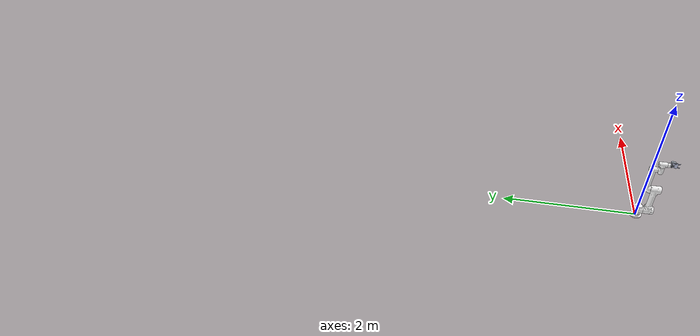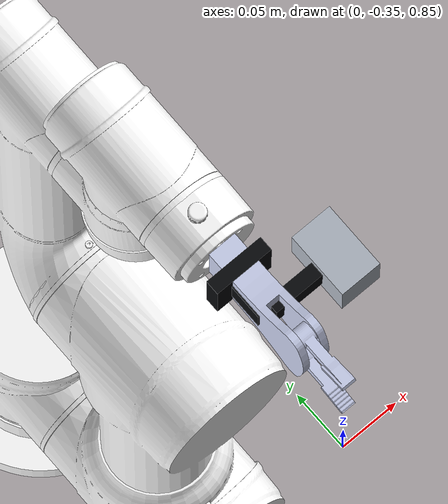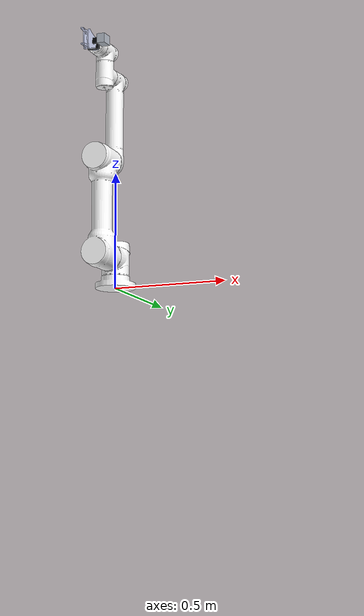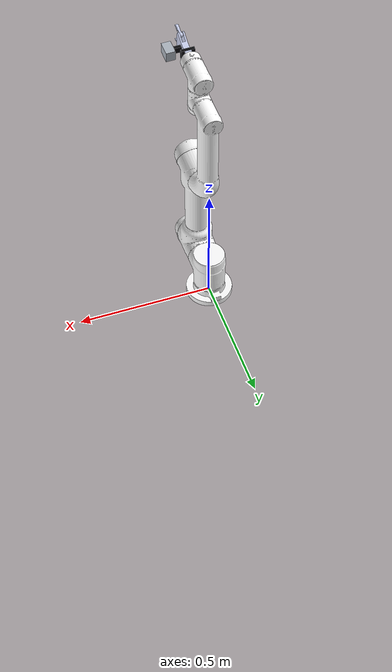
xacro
<?xml version="1.0"?>
<robot name="aubo_i5" xmlns:xacro="http://www.ros.org/wiki/xacro">
  <xacro:property name="M_PI" value="3.141592653589793"/>
  <xacro:arg name="camera_horizontal_fov" default="1.3962634016"/>
  <xacro:arg name="camera_lateral_offset" default="0.060"/>
  <xacro:arg name="camera_mount_z_shift" default="0.0"/>
  <xacro:arg name="camera_clip_near" default="0.05"/>
  <xacro:arg name="camera_pointcloud_cutoff" default="0.08"/>

  <xacro:include filename="$(find aubo_description)/urdf/jiazhua.urdf"/>
  <xacro:include filename="$(find aubo_description)/urdf/arm.xacro"/>
  <xacro:include filename="$(find aubo_description)/urdf/hand_camera.xacro"/>

  <joint name="ee_link_joint" type="fixed">
    <parent link="wrist3_Link"/>
    <child link="gripper_base_link"/>
    <origin xyz="0 0 0" rpy="0 0 0"/>
  </joint>

  <xacro:aubo_hand_camera parent_link="gripper_base_link"
      horizontal_fov="$(arg camera_horizontal_fov)"
      lateral_offset="$(arg camera_lateral_offset)"
      mount_z_shift="$(arg camera_mount_z_shift)"
      clip_near="$(arg camera_clip_near)"
      pointcloud_cutoff="$(arg camera_pointcloud_cutoff)"/>
</robot>

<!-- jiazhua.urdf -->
<robot name="jiazhua">

  <link name="gripper_base_link">
    <inertial>
      <origin xyz="0.0012 2.42861286636753E-17 0.0475830266682981" rpy="0 0 0" />
      <mass value="0.10588615547803" />
      <inertia
        ixx="0.000120405813410356"
        ixy="-3.77401154477319E-21"
        ixz="3.59933442415666E-21"
        iyy="9.48339427252608E-05"
        iyz="-1.11428968367808E-20"
        izz="3.86432252264647E-05" />
    </inertial>
    <visual>
      <origin xyz="0 0 0" rpy="0 0 0" />
      <geometry>
        <mesh filename="package://aubo_description/meshes/jiazhua/base_link.STL" />
      </geometry>
      <material name="jiazhua_bask_link_material">
        <color rgba="0.792156862745098 0.819607843137255 0.933333333333333 1" />
      </material>
    </visual>
    <collision>
      <origin  xyz="0 0 0" rpy="0 0 0" />
      <geometry>
        <mesh filename="package://aubo_description/meshes/jiazhua/base_link.STL" />
      </geometry>
    </collision>
  </link>
  <link  name="Link1">
    <inertial>
      <origin xyz="0.00188050176688574 -0.00120387769826689 0.0150298969423478" rpy="0 0 0" />
      <mass value="0.0054287821000724" />
      <inertia
        ixx="1.43577242109414E-06"
        ixy="9.68992808778747E-11"
        ixz="-2.28401464592307E-07"
        iyy="1.47943037043788E-06"
        iyz="4.56593730463517E-10"
        izz="1.48811775578354E-07" />
    </inertial>
    <visual>
      <origin xyz="0 0 0" rpy="0 0 0" />
      <geometry>
        <mesh filename="package://aubo_description/meshes/jiazhua/Link1.STL" />
      </geometry>
      <material name="link1_material">
        <color rgba="0.792156862745098 0.819607843137255 0.933333333333333 1" />
      </material>
    </visual>
    <collision>
      <origin xyz="0 0 0" rpy="0 0 0" />
      <geometry>
        <mesh filename="package://aubo_description/meshes/jiazhua/Link1.STL" />
      </geometry>
    </collision>
  </link>
  <!--
    The two fingers rotate about their local Y axes.  Because the finger joint
    frames have opposite yaw angles, equal positive joint commands produce a
    symmetric closing motion.
  -->
  <joint name="joint1" type="revolute">
    <origin xyz="0 -0.029 0.0892076231496363" rpy="0 -0.228448582107719 1.5707963267949" />
    <parent  link="gripper_base_link" />
    <child link="Link1" />
    <axis xyz="0 1 0" />
    <limit lower="0.0" upper="0.55" effort="20.0" velocity="1.0" />
    <dynamics damping="0.15" friction="0.05" />
  </joint>
  <link name="Link2">
    <inertial>
      <origin xyz="0.00184644766642264 0.00119612230173309 0.0148207361975697" rpy="0 0 0" />
      <mass  value="0.00542878210007239" />
      <inertia
        ixx="1.43577242109413E-06"
        ixy="9.68992808778728E-11"
        ixz="-2.28401464592308E-07"
        iyy="1.47943037043787E-06"
        iyz="4.56593730463535E-10"
        izz="1.48811775578354E-07" />
    </inertial>
    <visual>
      <origin xyz="0 0 0" rpy="0 0 0" />
      <geometry>
        <mesh filename="package://aubo_description/meshes/jiazhua/Link2.STL" />
      </geometry>
      <material name="link2_material">
        <color rgba="0.792156862745098 0.819607843137255 0.933333333333333 1" />
      </material>
    </visual>
    <collision>
      <origin xyz="0 0 0" rpy="0 0 0" />
      <geometry>
        <mesh filename="package://aubo_description/meshes/jiazhua/Link2.STL" />
      </geometry>
    </collision>
  </link>
  <joint name="joint2" type="revolute">
    <origin xyz="0 0.029 0.0892076231496363" rpy="0 -0.252554771757915 -1.5707963267949" />
    <parent link="gripper_base_link" />
    <child link="Link2" />
    <axis xyz="0 1 0" />
    <limit lower="0.0" upper="0.55" effort="20.0" velocity="1.0" />
    <dynamics damping="0.15" friction="0.05" />
  </joint>

  <joint name="gripper_joint" type="fixed">
      <origin xyz="0 0 0.12" rpy="0 0 0"/>
      <parent link="gripper_base_link"/>
      <child link="gripper_link"/>
  </joint>
  <link name="gripper_link" />

  <!-- Tool centre point between and slightly in front of the fingertips.
       Keep gripper_link for compatibility and use tcp_link as the MoveIt tip. -->
  <joint name="tcp_joint" type="fixed">
      <origin xyz="0 0 0" rpy="0 0 0"/>
      <parent link="gripper_link"/>
      <child link="tcp_link"/>
  </joint>
  <link name="tcp_link" />

  <!-- Contact parameters for grasping lightweight objects in Gazebo. -->
  <gazebo reference="Link1">
    <mu1>20.0</mu1>
    <mu2>20.0</mu2>
    <kp>1000000</kp>
    <kd>100</kd>
    <minDepth>0.002</minDepth>
    <maxVel>0.01</maxVel>
  </gazebo>
  <gazebo reference="Link2">
    <mu1>20.0</mu1>
    <mu2>20.0</mu2>
    <kp>1000000</kp>
    <kd>100</kd>
    <minDepth>0.002</minDepth>
    <maxVel>0.01</maxVel>
  </gazebo>

  <!-- ros_control transmissions used by Gazebo and compatible hardware interfaces. -->
  <transmission name="joint1_trans">
    <type>transmission_interface/SimpleTransmission</type>
    <joint name="joint1">
      <hardwareInterface>hardware_interface/PositionJointInterface</hardwareInterface>
    </joint>
    <actuator name="joint1_motor">
      <hardwareInterface>hardware_interface/PositionJointInterface</hardwareInterface>
      <mechanicalReduction>1</mechanicalReduction>
    </actuator>
  </transmission>
  <transmission name="joint2_trans">
    <type>transmission_interface/SimpleTransmission</type>
    <joint name="joint2">
      <hardwareInterface>hardware_interface/PositionJointInterface</hardwareInterface>
    </joint>
    <actuator name="joint2_motor">
      <hardwareInterface>hardware_interface/PositionJointInterface</hardwareInterface>
      <mechanicalReduction>1</mechanicalReduction>
    </actuator>
  </transmission>
</robot>

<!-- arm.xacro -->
<robot name="aubo_i5" xmlns:xacro="http://ros.org/wiki/xacro">

 <!-- Keep the original stand-alone behaviour by default.  Composite robots can
      disable the world joint and place ros_control in another namespace. -->
    <xacro:arg name="standalone" default="true"/>
    <xacro:arg name="robot_namespace" default="/aubo_i5"/>

 <!-- Defining the colors used in this robot -->
    <material name="Black">
        <color rgba="0 0 0 1"/>
    </material>

    <material name="White">
        <color rgba="1 1 1 1"/>
    </material>

    <material name="Blue">
        <color rgba="0 0 1 1"/>
    </material>

    <material name="Red">
        <color rgba="1 0 0 1"/>
    </material>

    <material name="Grey">
        <color rgba="0.96 0.96 0.96 1"/>
    </material>

    <!-- Constants -->
    <xacro:property name="M_PI" value="3.14159"/>

    <!--/////////////////// DYNAMICS PARAM //////////////////////-->

    <xacro:macro name="I5_Shoulder_Inertia">
        <origin xyz="0.0 0.006 -0.002"
                rpy="0 0 0" />
        <mass value="5.05" />
        <inertia ixx="0.0148"
                 ixy="0"
                 ixz="0"
                 iyy="0.0143"
                 iyz="-0.0"
                 izz="0.0095" />
    </xacro:macro>

    <xacro:macro name="I5_UpperArm_Inertia">
        <origin xyz="0.304 0.0 -0.03"
                rpy="0 0 0" />
        <mass value="11.90" />
        <inertia ixx="0.0305"
                 ixy="0"
                 ixz="0"
                 iyy="0.4505"
                 iyz="0"
                 izz="0.0095" />
    </xacro:macro>

    <xacro:macro name="I5_ForeArm_Inertia">
        <origin xyz="0.415 0.0 0.0992"
                rpy="0 0 0" />
        <mass  value="3.3" />
        <inertia ixx="0.0033"
                 ixy="0"
                 ixz="0.0009"
                 iyy="0.0575"
                 iyz="0"
                 izz="0.0565" />
    </xacro:macro>

    <xacro:macro name="I5_Wrist1_Inertia">
        <origin xyz="0.0 0.0028 -0.003"
                rpy="0 0 0" />
        <mass value="1.62" />
        <inertia ixx="0.0023"
                 ixy="0"
                 ixz="0"
                 iyy="0.0013"
                 iyz="0.0"
                 izz="0.0022" />
    </xacro:macro>

    <xacro:macro name="I5_Wrist2_Inertia">
        <origin xyz="0.0 -0.0028 -0.003"
                rpy="0 0 0" />
        <mass value="1.62" />
        <inertia ixx="0.0023"
                 ixy="0"
                 ixz="0"
                 iyy="0.0013"
                 iyz="0.0"
                 izz="0.0022" />
    </xacro:macro>

    <xacro:macro name="I5_Wrist3_Inertia">
        <origin xyz="0.0 0.0 -0.0071"
                rpy="0 0 0" />
        <mass value="0.40" />
        <inertia ixx="0.013939"
                 ixy="0"
                 ixz="0"
                 iyy="0.013988"
                 iyz="0.0"
                 izz="0.0224092" />
    </xacro:macro>

    <!--/////////////////////////////// BASE_LINK ////////////////////////////////////-->

   <link name="base_link">
    <inertial>
      <origin xyz="-1.4795E-13 0.0015384 0.020951" rpy="0 0 0" />
      <mass value="0.83419" />
      <inertia ixx="0.0014414" ixy="7.8809E-15" ixz="8.5328E-16" iyy="0.0013542" iyz="-1.4364E-05" izz="0.0024659" />
    </inertial>
    <visual>
      <origin xyz="0 0 0" rpy="0 0 0" />
      <geometry>
        <mesh filename="package://aubo_description/meshes/aubo_i5/visual/base_link.DAE" />
      </geometry>
      <material name="">
        <color rgba="1 1 1 1" />
      </material>
    </visual>
    <collision>
      <origin xyz="0 0 0" rpy="0 0 0" />
      <geometry>
        <mesh filename="package://aubo_description/meshes/aubo_i5/collision/base_link.STL" />
      </geometry>
    </collision>
  </link>

  <!--/////////////////////////////// SHOULDER_LINK ////////////////////////////////////-->
  <link name="shoulder_Link">
    <inertial>
      <xacro:I5_Shoulder_Inertia />
    </inertial>
    <visual>
      <origin xyz="0 0 0" rpy="0 0 0" />
      <geometry>
        <mesh filename="package://aubo_description/meshes/aubo_i5/visual/shoulder_Link.DAE" />
      </geometry>
      <material name="">
        <color rgba="1 1 1 1" />
      </material>
    </visual>
    <collision>
      <origin xyz="0 0 0" rpy="0 0 0" />
      <geometry>
        <mesh filename="package://aubo_description/meshes/aubo_i5/collision/shoulder_Link.STL" />
      </geometry>
    </collision>
  </link>

  <!--/////////////////////////////// SHOULDER_JOINT ////////////////////////////////////-->
  <joint name="shoulder_joint" type="revolute">
    <origin xyz="0 0 0.122" rpy="0 0 3.1416" />
    <parent link="base_link" />
    <child link="shoulder_Link" />
    <axis xyz="0 0 1" />
    <limit lower="-3.04" upper="3.04" effort="300" velocity="100" />
  </joint>

  <!--/////////////////////////////// UPPERARM_LINK ////////////////////////////////////-->
  <link name="upperArm_Link">
    <inertial>
      <xacro:I5_UpperArm_Inertia />
    </inertial>
    <visual>
      <origin xyz="0 0 0" rpy="0 0 0" />
      <geometry>
        <mesh filename="package://aubo_description/meshes/aubo_i5/visual/upperArm_Link.DAE" />
      </geometry>
      <material name="">
        <color rgba="1 1 1 1" />
      </material>
    </visual>
    <collision>
      <origin xyz="0 0 0" rpy="0 0 0" />
      <geometry>
        <mesh filename="package://aubo_description/meshes/aubo_i5/collision/upperArm_Link.STL" />
      </geometry>
    </collision>
  </link>

  <!--/////////////////////////////// UPPERARM_JOINT ////////////////////////////////////-->
  <joint name="upperArm_joint" type="revolute">
    <origin xyz="0 0.1215 0" rpy="-1.5708 -1.5708 0" />
    <parent link="shoulder_Link" />
    <child link="upperArm_Link" />
    <axis xyz="0 0 1" />
    <!-- Restrict the second actuated joint to -60 deg ... +60 deg. -->
    <limit lower="-1.0471976" upper="1.0471976" effort="300" velocity="100" />
  </joint>

  <!--/////////////////////////////// FOREARM_LINK ////////////////////////////////////-->
  <link name="foreArm_Link">
    <inertial>
      <xacro:I5_ForeArm_Inertia />
    </inertial>
    <visual>
      <origin xyz="0 0 0" rpy="0 0 0" />
      <geometry>
        <mesh filename="package://aubo_description/meshes/aubo_i5/visual/foreArm_Link.DAE" />
      </geometry>
      <material name="">
        <color rgba="1 1 1 1" />
      </material>
    </visual>
    <collision>
      <origin xyz="0 0 0" rpy="0 0 0" />
      <geometry>
        <mesh filename="package://aubo_description/meshes/aubo_i5/collision/foreArm_Link.STL" />
      </geometry>
    </collision>
  </link>

  <!--/////////////////////////////// FOREARM_JOINT ////////////////////////////////////-->
  <joint name="foreArm_joint" type="revolute">
    <origin xyz="0.408 0 0" rpy="-3.1416 -5.1632E-18 -5.459E-16" />
    <parent link="upperArm_Link" />
    <child link="foreArm_Link" />
    <axis xyz="0 0 1" />
    <limit lower="-3.04" upper="3.04" effort="300" velocity="100" />
  </joint>

  <!--/////////////////////////////// WRIST1_LINK ////////////////////////////////////-->
  <link name="wrist1_Link">
    <inertial>
      <xacro:I5_Wrist1_Inertia />
    </inertial>
    <visual>
      <origin xyz="0 0 0" rpy="0 0 0" />
      <geometry>
        <mesh filename="package://aubo_description/meshes/aubo_i5/visual/wrist1_Link.DAE" />
      </geometry>
      <material name="">
        <color rgba="1 1 1 1" />
      </material>
    </visual>
    <collision>
      <origin xyz="0 0 0" rpy="0 0 0" />
      <geometry>
        <mesh filename="package://aubo_description/meshes/aubo_i5/collision/wrist1_Link.STL" />
      </geometry>
    </collision>
  </link>

  <!--/////////////////////////////// WRIST1_JOINT ////////////////////////////////////-->
  <joint name="wrist1_joint" type="revolute">
    <origin xyz="0.376 0 0" rpy="3.1416 -1.8323E-15 1.5708" />
    <parent link="foreArm_Link" />
    <child link="wrist1_Link" />
    <axis xyz="0 0 1" />
    <limit lower="-3.04" upper="3.04" effort="300" velocity="100" />
  </joint>

  <!--/////////////////////////////// WRIST2_LINK ////////////////////////////////////-->
  <link name="wrist2_Link">
    <inertial>
      <xacro:I5_Wrist2_Inertia />
    </inertial>
    <visual>
      <origin xyz="0 0 0" rpy="0 0 0" />
      <geometry>
        <mesh filename="package://aubo_description/meshes/aubo_i5/visual/wrist2_Link.DAE" />
      </geometry>
      <material name="">
        <color rgba="1 1 1 1" />
      </material>
    </visual>
    <collision>
      <origin xyz="0 0 0" rpy="0 0 0" />
      <geometry>
        <mesh filename="package://aubo_description/meshes/aubo_i5/collision/wrist2_Link.STL" />
      </geometry>
    </collision>
  </link>

  <!--/////////////////////////////// WRIST2_JOINT ////////////////////////////////////-->
  <joint name="wrist2_joint" type="revolute">
    <origin xyz="0 0.1025 0" rpy="-1.5708 -1.8709E-15 -1.6653E-16" />
    <parent link="wrist1_Link" />
    <child link="wrist2_Link" />
    <axis xyz="0 0 1" />
    <limit lower="-3.04" upper="3.04" effort="300" velocity="100" />
  </joint>

  <!--/////////////////////////////// WRIST3_LINK ////////////////////////////////////-->
  <link name="wrist3_Link">
    <inertial>
      <xacro:I5_Wrist3_Inertia />
    </inertial>
    <visual>
      <origin xyz="0 0 0" rpy="0 0 0" />
      <geometry>
        <mesh filename="package://aubo_description/meshes/aubo_i5/visual/wrist3_Link.DAE" />
      </geometry>
      <material name="">
        <color rgba="1 1 1 1" />
      </material>
    </visual>
    <collision>
      <origin xyz="0 0 0" rpy="0 0 0" />
      <geometry>
        <mesh filename="package://aubo_description/meshes/aubo_i5/collision/wrist3_Link.STL" />
      </geometry>
    </collision>
  </link>

  <!--/////////////////////////////// WRIST3_JOINT ////////////////////////////////////-->
  <joint name="wrist3_joint" type="revolute">
    <origin xyz="0 -0.094 0" rpy="1.5708 0 1.7907E-15" />
    <parent link="wrist2_Link" />
    <child link="wrist3_Link" />
    <axis xyz="0 0 1" />
    <limit lower="-3.04" upper="3.04" effort="300" velocity="100" />
  </joint>

 <!-- /////////////////////////////////   world   ////////////////////////////////////// -->
  <xacro:if value="$(arg standalone)">
    <link name="world" />

    <joint name="world_joint" type="fixed">
      <parent link="world" />
      <child link ="base_link" />
      <origin xyz="0.0 0.0 0.0" rpy="0.0 0.0 0.0" />
    </joint>
  </xacro:if>

  <!-- /////////////////////////////////   gazebo color   ////////////////////////////////////// -->

  <!--////////////////////////////////// Transmissions for ROS Control //////////////////////////-->

<xacro:macro name="aubo_arm_transmission" params="joint_name">
     <transmission name="${joint_name}_trans">
       <type>transmission_interface/SimpleTransmission</type>
       <joint name="${joint_name}">
         <hardwareInterface>hardware_interface/PositionJointInterface</hardwareInterface>
       </joint>
       <actuator name="${joint_name}_motor">
	       <hardwareInterface>hardware_interface/PositionJointInterface</hardwareInterface>
         <mechanicalReduction>1</mechanicalReduction>
       </actuator>
     </transmission>
 </xacro:macro>

  <xacro:aubo_arm_transmission joint_name="shoulder_joint"/>
  <xacro:aubo_arm_transmission joint_name="upperArm_joint"/>
  <xacro:aubo_arm_transmission joint_name="foreArm_joint"/>
  <xacro:aubo_arm_transmission joint_name="wrist1_joint"/>
  <xacro:aubo_arm_transmission joint_name="wrist2_joint"/>
  <xacro:aubo_arm_transmission joint_name="wrist3_joint"/>

  <!-- ros_control plugin -->
  <gazebo>
      <plugin name="gazebo_ros_control" filename="libgazebo_ros_control.so">
          <robotNamespace>$(arg robot_namespace)</robotNamespace>
	        <robotSimType>gazebo_ros_control/DefaultRobotHWSim</robotSimType>
          <legacyModeNS>true</legacyModeNS>
      </plugin>
  </gazebo>

</robot>

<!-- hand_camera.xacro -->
<robot name="aubo_hand_camera" xmlns:xacro="http://www.ros.org/wiki/xacro">

  <!-- Eye-in-hand RGB-D camera with RealSense-compatible ROS topic names.
       Camera optical conventions: +Z forward, +X right, +Y down. -->
  <xacro:macro name="aubo_hand_camera" params="parent_link lateral_offset:=0.060 mount_z_shift:=0.0 horizontal_fov:=1.3962634016 clip_near:=0.05 pointcloud_cutoff:=0.08">
    <link name="hand_camera_mount_link">
      <visual>
        <!-- 安装底板：固定在夹爪基座中心。 -->
        <origin xyz="0 0 ${0.020 + mount_z_shift}" rpy="0 0 0"/>
        <geometry><box size="0.050 0.050 0.012"/></geometry>
        <material name="hand_camera_black"><color rgba="0.025 0.03 0.04 1"/></material>
      </visual>
      <visual>
        <!-- 竖向支柱：连接安装底板与相机横梁。 -->
        <origin xyz="0 0 ${0.0375 + mount_z_shift}" rpy="0 0 0"/>
        <geometry><box size="0.024 0.024 0.035"/></geometry>
        <material name="hand_camera_black"/>
      </visual>
      <visual>
        <!-- 相机横梁：沿 X 方向延伸 60 mm，Y 方向保持居中。 -->
        <origin xyz="${lateral_offset / 2} 0 ${0.055 + mount_z_shift}" rpy="0 0 0"/>
        <geometry><box size="${lateral_offset} 0.024 0.012"/></geometry>
        <material name="hand_camera_black"/>
      </visual>
      <collision>
        <origin xyz="0 0 ${0.020 + mount_z_shift}" rpy="0 0 0"/>
        <geometry><box size="0.050 0.050 0.012"/></geometry>
      </collision>
      <collision>
        <origin xyz="0 0 ${0.0375 + mount_z_shift}" rpy="0 0 0"/>
        <geometry><box size="0.024 0.024 0.035"/></geometry>
      </collision>
      <collision>
        <origin xyz="${lateral_offset / 2} 0 ${0.055 + mount_z_shift}" rpy="0 0 0"/>
        <geometry><box size="${lateral_offset} 0.024 0.012"/></geometry>
      </collision>
      <inertial>
        <origin xyz="${0.025 + 0.5 * (lateral_offset - 0.060)} 0 ${0.045 + mount_z_shift}" rpy="0 0 0"/>
        <mass value="0.12"/>
        <inertia ixx="0.000066" ixy="0" ixz="0"
                 iyy="0.000018" iyz="0" izz="0.000080"/>
      </inertial>
    </link>
    <joint name="hand_camera_mount_joint" type="fixed">
      <parent link="${parent_link}"/>
      <child link="hand_camera_mount_link"/>
      <origin xyz="0 0 0" rpy="0 0 0"/>
    </joint>

    <link name="hand_camera_link">
      <visual>
        <geometry><box size="0.055 0.040 0.035"/></geometry>
        <material name="hand_camera_silver"><color rgba="0.68 0.71 0.75 1"/></material>
      </visual>
      <collision>
        <geometry><box size="0.055 0.040 0.035"/></geometry>
      </collision>
      <inertial>
        <mass value="0.10"/>
        <inertia ixx="0.000022" ixy="0" ixz="0"
                 iyy="0.000035" iyz="0" izz="0.000039"/>
      </inertial>
    </link>
    <joint name="hand_camera_joint" type="fixed">
      <parent link="hand_camera_mount_link"/>
      <child link="hand_camera_link"/>
      <!-- 相机相对夹爪沿 X 方向偏移 60 mm，Y 方向无侧向偏移。
           相机局部 +X 方向旋转后指向夹爪的 +Z 工作方向。 -->
      <origin xyz="${lateral_offset} 0 ${0.055 + mount_z_shift}" rpy="0 -1.57079632679 0"/>
    </joint>

    <link name="hand_camera_optical_frame"/>
    <joint name="hand_camera_optical_joint" type="fixed">
      <parent link="hand_camera_link"/>
      <child link="hand_camera_optical_frame"/>
      <origin xyz="0.03 0 0" rpy="-1.57079632679 0 -1.57079632679"/>
    </joint>

    <!-- Standard RealSense frame aliases.  Keep the old hand_camera frame for
         compatibility with the sorting package while new code uses these. -->
    <link name="camera_link"/>
    <joint name="camera_link_joint" type="fixed">
      <parent link="hand_camera_link"/>
      <child link="camera_link"/>
      <origin xyz="0 0 0" rpy="0 0 0"/>
    </joint>
    <link name="camera_color_frame"/>
    <joint name="camera_color_joint" type="fixed">
      <parent link="camera_link"/>
      <child link="camera_color_frame"/>
      <origin xyz="0.03 0 0" rpy="0 0 0"/>
    </joint>
    <link name="camera_color_optical_frame"/>
    <joint name="camera_color_optical_joint" type="fixed">
      <parent link="camera_color_frame"/>
      <child link="camera_color_optical_frame"/>
      <origin xyz="0 0 0" rpy="-1.57079632679 0 -1.57079632679"/>
    </joint>
    <link name="camera_depth_frame"/>
    <joint name="camera_depth_joint" type="fixed">
      <parent link="camera_link"/>
      <child link="camera_depth_frame"/>
      <origin xyz="0.03 0 0" rpy="0 0 0"/>
    </joint>
    <link name="camera_depth_optical_frame"/>
    <joint name="camera_depth_optical_joint" type="fixed">
      <parent link="camera_depth_frame"/>
      <child link="camera_depth_optical_frame"/>
      <origin xyz="0 0 0" rpy="-1.57079632679 0 -1.57079632679"/>
    </joint>

    <gazebo reference="hand_camera_mount_link">
      <material>Gazebo/Black</material>
    </gazebo>
    <gazebo reference="hand_camera_link">
      <material>Gazebo/Grey</material>
      <sensor type="depth" name="hand_realsense">
        <pose>0.03 0 0 0 0 0</pose>
        <always_on>true</always_on>
        <visualize>false</visualize>
        <update_rate>20</update_rate>
        <camera name="hand_realsense_sensor">
          <!-- 80 deg horizontal FOV: wide enough to acquire targets during
               eye-in-hand search without excessive edge perspective. -->
          <horizontal_fov>${horizontal_fov}</horizontal_fov>
          <image>
            <width>1280</width>
            <height>720</height>
            <format>R8G8B8</format>
          </image>
          <clip><near>${clip_near}</near><far>20.0</far></clip>
        </camera>
        <plugin name="hand_gazebo_realsense" filename="libgazebo_ros_openni_kinect.so">
          <robotNamespace>/</robotNamespace>
          <cameraName>camera</cameraName>
          <alwaysOn>true</alwaysOn>
          <updateRate>20.0</updateRate>
          <imageTopicName>color/image_raw</imageTopicName>
          <cameraInfoTopicName>color/camera_info</cameraInfoTopicName>
          <!-- The simulated depth sensor shares the color optical centre, so
               its depth image is already aligned to the color image. -->
          <depthImageTopicName>aligned_depth_to_color/image_raw</depthImageTopicName>
          <depthImageCameraInfoTopicName>aligned_depth_to_color/camera_info</depthImageCameraInfoTopicName>
          <pointCloudTopicName>depth/color/points</pointCloudTopicName>
          <frameName>camera_color_optical_frame</frameName>
          <baseline>0.05</baseline>
          <pointCloudCutoff>${pointcloud_cutoff}</pointCloudCutoff>
          <pointCloudCutoffMax>4.0</pointCloudCutoffMax>
          <distortion_k1>0.0</distortion_k1>
          <distortion_k2>0.0</distortion_k2>
          <distortion_k3>0.0</distortion_k3>
          <distortion_t1>0.0</distortion_t1>
          <distortion_t2>0.0</distortion_t2>
        </plugin>
      </sensor>
    </gazebo>
  </xacro:macro>
</robot>
